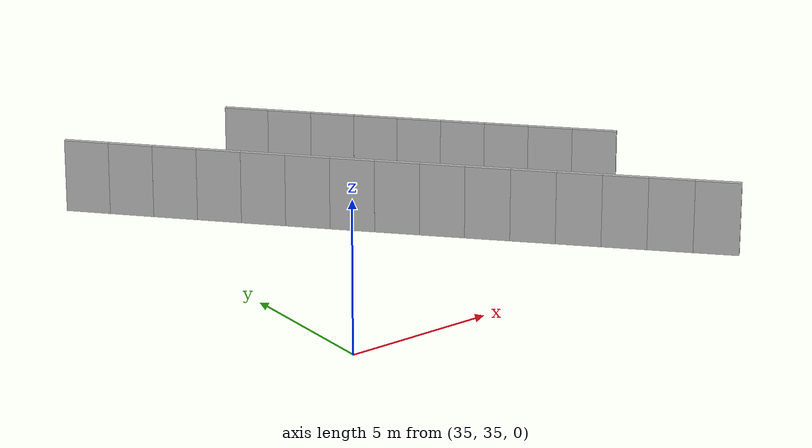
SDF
<?xml version="1.0" ?>
<sdf version="1.6">
  <model name="sps_0809">
    <pose frame="">0 0 0 0 -0 0</pose>
    <static>1</static>
    <self_collide>0</self_collide>
    <allow_auto_disable>0</allow_auto_disable>
    <link name="Wall8486">
      <kinematic>0</kinematic>
      <gravity>1</gravity>
      <self_collide>0</self_collide>
      <collision name="collision">
        <geometry>
          <box>
            <size>1.49906 0.15 2.5</size>
          </box>
        </geometry>
        <pose frame="">0 0 0 0 -0 0</pose>
      </collision>
      <visual name="visual">
        <geometry>
          <box>
            <size>1.49906 0.15 2.5</size>
          </box>
        </geometry>
        <pose frame="">0 0 0 0 -0 0</pose>
        <cast_shadows>1</cast_shadows>
        <transparency>0.0</transparency>
      </visual>
      <pose frame="">34.7833 49.8091 1.25 0 0 -0.826983</pose>
    </link>
    <link name="Wall8487">
      <kinematic>0</kinematic>
      <gravity>1</gravity>
      <self_collide>0</self_collide>
      <collision name="collision">
        <geometry>
          <box>
            <size>1.49888 0.15 2.5</size>
          </box>
        </geometry>
        <pose frame="">0 0 0 0 -0 0</pose>
      </collision>
      <visual name="visual">
        <geometry>
          <box>
            <size>1.49888 0.15 2.5</size>
          </box>
        </geometry>
        <pose frame="">0 0 0 0 -0 0</pose>
        <cast_shadows>1</cast_shadows>
        <transparency>0.0</transparency>
      </visual>
      <pose frame="">35.7992 48.7068 1.25 0 0 -0.825432</pose>
    </link>
    <link name="Wall8488">
      <kinematic>0</kinematic>
      <gravity>1</gravity>
      <self_collide>0</self_collide>
      <collision name="collision">
        <geometry>
          <box>
            <size>1.49901 0.15 2.5</size>
          </box>
        </geometry>
        <pose frame="">0 0 0 0 -0 0</pose>
      </collision>
      <visual name="visual">
        <geometry>
          <box>
            <size>1.49901 0.15 2.5</size>
          </box>
        </geometry>
        <pose frame="">0 0 0 0 -0 0</pose>
        <cast_shadows>1</cast_shadows>
        <transparency>0.0</transparency>
      </visual>
      <pose frame="">36.8166 47.6061 1.25 0 0 -0.823902</pose>
    </link>
    <link name="Wall8489">
      <kinematic>0</kinematic>
      <gravity>1</gravity>
      <self_collide>0</self_collide>
      <collision name="collision">
        <geometry>
          <box>
            <size>1.49896 0.15 2.5</size>
          </box>
        </geometry>
        <pose frame="">0 0 0 0 -0 0</pose>
      </collision>
      <visual name="visual">
        <geometry>
          <box>
            <size>1.49896 0.15 2.5</size>
          </box>
        </geometry>
        <pose frame="">0 0 0 0 -0 0</pose>
        <cast_shadows>1</cast_shadows>
        <transparency>0.0</transparency>
      </visual>
      <pose frame="">37.8359 46.507 1.25 0 0 -0.822203</pose>
    </link>
    <link name="Wall8490">
      <kinematic>0</kinematic>
      <gravity>1</gravity>
      <self_collide>0</self_collide>
      <collision name="collision">
        <geometry>
          <box>
            <size>1.49892 0.15 2.5</size>
          </box>
        </geometry>
        <pose frame="">0 0 0 0 -0 0</pose>
      </collision>
      <visual name="visual">
        <geometry>
          <box>
            <size>1.49892 0.15 2.5</size>
          </box>
        </geometry>
        <pose frame="">0 0 0 0 -0 0</pose>
        <cast_shadows>1</cast_shadows>
        <transparency>0.0</transparency>
      </visual>
      <pose frame="">38.857 45.4096 1.25 0 0 -0.820677</pose>
    </link>
    <link name="Wall8491">
      <kinematic>0</kinematic>
      <gravity>1</gravity>
      <self_collide>0</self_collide>
      <collision name="collision">
        <geometry>
          <box>
            <size>1.49906 0.15 2.5</size>
          </box>
        </geometry>
        <pose frame="">0 0 0 0 -0 0</pose>
      </collision>
      <visual name="visual">
        <geometry>
          <box>
            <size>1.49906 0.15 2.5</size>
          </box>
        </geometry>
        <pose frame="">0 0 0 0 -0 0</pose>
        <cast_shadows>1</cast_shadows>
        <transparency>0.0</transparency>
      </visual>
      <pose frame="">39.8797 44.3137 1.25 0 0 -0.819204</pose>
    </link>
    <link name="Wall8492">
      <kinematic>0</kinematic>
      <gravity>1</gravity>
      <self_collide>0</self_collide>
      <collision name="collision">
        <geometry>
          <box>
            <size>1.49885 0.15 2.5</size>
          </box>
        </geometry>
        <pose frame="">0 0 0 0 -0 0</pose>
      </collision>
      <visual name="visual">
        <geometry>
          <box>
            <size>1.49885 0.15 2.5</size>
          </box>
        </geometry>
        <pose frame="">0 0 0 0 -0 0</pose>
        <cast_shadows>1</cast_shadows>
        <transparency>0.0</transparency>
      </visual>
      <pose frame="">40.904 43.2194 1.25 0 0 -0.817567</pose>
    </link>
    <link name="Wall8493">
      <kinematic>0</kinematic>
      <gravity>1</gravity>
      <self_collide>0</self_collide>
      <collision name="collision">
        <geometry>
          <box>
            <size>1.4989 0.15 2.5</size>
          </box>
        </geometry>
        <pose frame="">0 0 0 0 -0 0</pose>
      </collision>
      <visual name="visual">
        <geometry>
          <box>
            <size>1.4989 0.15 2.5</size>
          </box>
        </geometry>
        <pose frame="">0 0 0 0 -0 0</pose>
        <cast_shadows>1</cast_shadows>
        <transparency>0.0</transparency>
      </visual>
      <pose frame="">41.9301 42.1268 1.25 0 0 -0.815981</pose>
    </link>
    <link name="Wall8494">
      <kinematic>0</kinematic>
      <gravity>1</gravity>
      <self_collide>0</self_collide>
      <collision name="collision">
        <geometry>
          <box>
            <size>1.499 0.15 2.5</size>
          </box>
        </geometry>
        <pose frame="">0 0 0 0 -0 0</pose>
      </collision>
      <visual name="visual">
        <geometry>
          <box>
            <size>1.499 0.15 2.5</size>
          </box>
        </geometry>
        <pose frame="">0 0 0 0 -0 0</pose>
        <cast_shadows>1</cast_shadows>
        <transparency>0.0</transparency>
      </visual>
      <pose frame="">42.958 41.0358 1.25 0 0 -0.814366</pose>
    </link>
    <link name="Wall8495">
      <kinematic>0</kinematic>
      <gravity>1</gravity>
      <self_collide>0</self_collide>
      <collision name="collision">
        <geometry>
          <box>
            <size>1.49876 0.15 2.5</size>
          </box>
        </geometry>
        <pose frame="">0 0 0 0 -0 0</pose>
      </collision>
      <visual name="visual">
        <geometry>
          <box>
            <size>1.49876 0.15 2.5</size>
          </box>
        </geometry>
        <pose frame="">0 0 0 0 -0 0</pose>
        <cast_shadows>1</cast_shadows>
        <transparency>0.0</transparency>
      </visual>
      <pose frame="">43.9876 39.9465 1.25 0 0 -0.812758</pose>
    </link>
    <link name="Wall8496">
      <kinematic>0</kinematic>
      <gravity>1</gravity>
      <self_collide>0</self_collide>
      <collision name="collision">
        <geometry>
          <box>
            <size>1.49913 0.15 2.5</size>
          </box>
        </geometry>
        <pose frame="">0 0 0 0 -0 0</pose>
      </collision>
      <visual name="visual">
        <geometry>
          <box>
            <size>1.49913 0.15 2.5</size>
          </box>
        </geometry>
        <pose frame="">0 0 0 0 -0 0</pose>
        <cast_shadows>1</cast_shadows>
        <transparency>0.0</transparency>
      </visual>
      <pose frame="">45.019 38.8588 1.25 0 0 -0.811138</pose>
    </link>
    <link name="Wall8497">
      <kinematic>0</kinematic>
      <gravity>1</gravity>
      <self_collide>0</self_collide>
      <collision name="collision">
        <geometry>
          <box>
            <size>1.49881 0.15 2.5</size>
          </box>
        </geometry>
        <pose frame="">0 0 0 0 -0 0</pose>
      </collision>
      <visual name="visual">
        <geometry>
          <box>
            <size>1.49881 0.15 2.5</size>
          </box>
        </geometry>
        <pose frame="">0 0 0 0 -0 0</pose>
        <cast_shadows>1</cast_shadows>
        <transparency>0.0</transparency>
      </visual>
      <pose frame="">46.0521 37.7727 1.25 0 0 -0.809646</pose>
    </link>
    <link name="Wall8498">
      <kinematic>0</kinematic>
      <gravity>1</gravity>
      <self_collide>0</self_collide>
      <collision name="collision">
        <geometry>
          <box>
            <size>1.49902 0.15 2.5</size>
          </box>
        </geometry>
        <pose frame="">0 0 0 0 -0 0</pose>
      </collision>
      <visual name="visual">
        <geometry>
          <box>
            <size>1.49902 0.15 2.5</size>
          </box>
        </geometry>
        <pose frame="">0 0 0 0 -0 0</pose>
        <cast_shadows>1</cast_shadows>
        <transparency>0.0</transparency>
      </visual>
      <pose frame="">47.0868 36.6882 1.25 0 0 -0.808145</pose>
    </link>
    <link name="Wall8499">
      <kinematic>0</kinematic>
      <gravity>1</gravity>
      <self_collide>0</self_collide>
      <collision name="collision">
        <geometry>
          <box>
            <size>1.49901 0.15 2.5</size>
          </box>
        </geometry>
        <pose frame="">0 0 0 0 -0 0</pose>
      </collision>
      <visual name="visual">
        <geometry>
          <box>
            <size>1.49901 0.15 2.5</size>
          </box>
        </geometry>
        <pose frame="">0 0 0 0 -0 0</pose>
        <cast_shadows>1</cast_shadows>
        <transparency>0.0</transparency>
      </visual>
      <pose frame="">48.1233 35.6053 1.25 0 0 -0.806446</pose>
    </link>
    <link name="Wall8500">
      <kinematic>0</kinematic>
      <gravity>1</gravity>
      <self_collide>0</self_collide>
      <collision name="collision">
        <geometry>
          <box>
            <size>1.49879 0.15 2.5</size>
          </box>
        </geometry>
        <pose frame="">0 0 0 0 -0 0</pose>
      </collision>
      <visual name="visual">
        <geometry>
          <box>
            <size>1.49879 0.15 2.5</size>
          </box>
        </geometry>
        <pose frame="">0 0 0 0 -0 0</pose>
        <cast_shadows>1</cast_shadows>
        <transparency>0.0</transparency>
      </visual>
      <pose frame="">49.1616 34.5242 1.25 0 0 -0.804836</pose>
    </link>
    <link name="Wall9570">
      <kinematic>0</kinematic>
      <gravity>1</gravity>
      <self_collide>0</self_collide>
      <collision name="collision">
        <geometry>
          <box>
            <size>1.49243 0.15 2.5</size>
          </box>
        </geometry>
        <pose frame="">0 0 0 0 -0 0</pose>
      </collision>
      <visual name="visual">
        <geometry>
          <box>
            <size>1.49243 0.15 2.5</size>
          </box>
        </geometry>
        <pose frame="">0 0 0 0 -0 0</pose>
        <cast_shadows>1</cast_shadows>
        <transparency>0.0</transparency>
      </visual>
      <pose frame="">40.8691 49.3248 1.25 0 0 -0.822161</pose>
    </link>
    <link name="Wall9571">
      <kinematic>0</kinematic>
      <gravity>1</gravity>
      <self_collide>0</self_collide>
      <collision name="collision">
        <geometry>
          <box>
            <size>1.49249 0.15 2.5</size>
          </box>
        </geometry>
        <pose frame="">0 0 0 0 -0 0</pose>
      </collision>
      <visual name="visual">
        <geometry>
          <box>
            <size>1.49249 0.15 2.5</size>
          </box>
        </geometry>
        <pose frame="">0 0 0 0 -0 0</pose>
        <cast_shadows>1</cast_shadows>
        <transparency>0.0</transparency>
      </visual>
      <pose frame="">41.8857 48.2321 1.25 0 0 -0.820742</pose>
    </link>
    <link name="Wall9572">
      <kinematic>0</kinematic>
      <gravity>1</gravity>
      <self_collide>0</self_collide>
      <collision name="collision">
        <geometry>
          <box>
            <size>1.49244 0.15 2.5</size>
          </box>
        </geometry>
        <pose frame="">0 0 0 0 -0 0</pose>
      </collision>
      <visual name="visual">
        <geometry>
          <box>
            <size>1.49244 0.15 2.5</size>
          </box>
        </geometry>
        <pose frame="">0 0 0 0 -0 0</pose>
        <cast_shadows>1</cast_shadows>
        <transparency>0.0</transparency>
      </visual>
      <pose frame="">42.904 47.141 1.25 0 0 -0.819036</pose>
    </link>
    <link name="Wall9573">
      <kinematic>0</kinematic>
      <gravity>1</gravity>
      <self_collide>0</self_collide>
      <collision name="collision">
        <geometry>
          <box>
            <size>1.4925 0.15 2.5</size>
          </box>
        </geometry>
        <pose frame="">0 0 0 0 -0 0</pose>
      </collision>
      <visual name="visual">
        <geometry>
          <box>
            <size>1.4925 0.15 2.5</size>
          </box>
        </geometry>
        <pose frame="">0 0 0 0 -0 0</pose>
        <cast_shadows>1</cast_shadows>
        <transparency>0.0</transparency>
      </visual>
      <pose frame="">43.9241 46.0515 1.25 0 0 -0.817617</pose>
    </link>
    <link name="Wall9574">
      <kinematic>0</kinematic>
      <gravity>1</gravity>
      <self_collide>0</self_collide>
      <collision name="collision">
        <geometry>
          <box>
            <size>1.49225 0.15 2.5</size>
          </box>
        </geometry>
        <pose frame="">0 0 0 0 -0 0</pose>
      </collision>
      <visual name="visual">
        <geometry>
          <box>
            <size>1.49225 0.15 2.5</size>
          </box>
        </geometry>
        <pose frame="">0 0 0 0 -0 0</pose>
        <cast_shadows>1</cast_shadows>
        <transparency>0.0</transparency>
      </visual>
      <pose frame="">44.9457 44.9636 1.25 0 0 -0.816002</pose>
    </link>
    <link name="Wall9575">
      <kinematic>0</kinematic>
      <gravity>1</gravity>
      <self_collide>0</self_collide>
      <collision name="collision">
        <geometry>
          <box>
            <size>1.49252 0.15 2.5</size>
          </box>
        </geometry>
        <pose frame="">0 0 0 0 -0 0</pose>
      </collision>
      <visual name="visual">
        <geometry>
          <box>
            <size>1.49252 0.15 2.5</size>
          </box>
        </geometry>
        <pose frame="">0 0 0 0 -0 0</pose>
        <cast_shadows>1</cast_shadows>
        <transparency>0.0</transparency>
      </visual>
      <pose frame="">45.9691 43.8774 1.25 0 0 -0.814319</pose>
    </link>
    <link name="Wall9576">
      <kinematic>0</kinematic>
      <gravity>1</gravity>
      <self_collide>0</self_collide>
      <collision name="collision">
        <geometry>
          <box>
            <size>1.49242 0.15 2.5</size>
          </box>
        </geometry>
        <pose frame="">0 0 0 0 -0 0</pose>
      </collision>
      <visual name="visual">
        <geometry>
          <box>
            <size>1.49242 0.15 2.5</size>
          </box>
        </geometry>
        <pose frame="">0 0 0 0 -0 0</pose>
        <cast_shadows>1</cast_shadows>
        <transparency>0.0</transparency>
      </visual>
      <pose frame="">46.9943 42.7928 1.25 0 0 -0.812787</pose>
    </link>
    <link name="Wall9577">
      <kinematic>0</kinematic>
      <gravity>1</gravity>
      <self_collide>0</self_collide>
      <collision name="collision">
        <geometry>
          <box>
            <size>1.49218 0.15 2.5</size>
          </box>
        </geometry>
        <pose frame="">0 0 0 0 -0 0</pose>
      </collision>
      <visual name="visual">
        <geometry>
          <box>
            <size>1.49218 0.15 2.5</size>
          </box>
        </geometry>
        <pose frame="">0 0 0 0 -0 0</pose>
        <cast_shadows>1</cast_shadows>
        <transparency>0.0</transparency>
      </visual>
      <pose frame="">48.0211 41.7099 1.25 0 0 -0.811171</pose>
    </link>
    <link name="Wall9578">
      <kinematic>0</kinematic>
      <gravity>1</gravity>
      <self_collide>0</self_collide>
      <collision name="collision">
        <geometry>
          <box>
            <size>1.49225 0.15 2.5</size>
          </box>
        </geometry>
        <pose frame="">0 0 0 0 -0 0</pose>
      </collision>
      <visual name="visual">
        <geometry>
          <box>
            <size>1.49225 0.15 2.5</size>
          </box>
        </geometry>
        <pose frame="">0 0 0 0 -0 0</pose>
        <cast_shadows>1</cast_shadows>
        <transparency>0.0</transparency>
      </visual>
      <pose frame="">49.0496 40.6287 1.25 0 0 -0.809579</pose>
    </link>
  </model>
</sdf>
